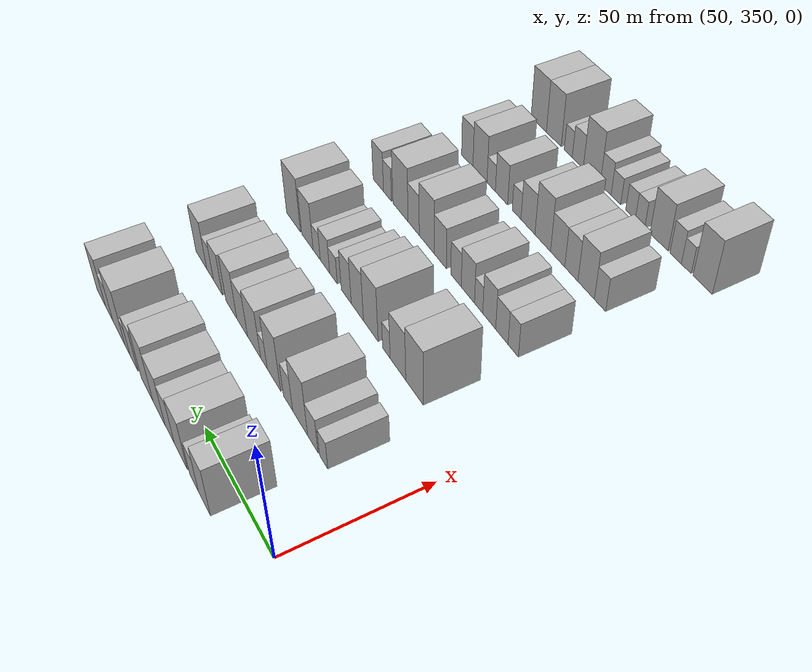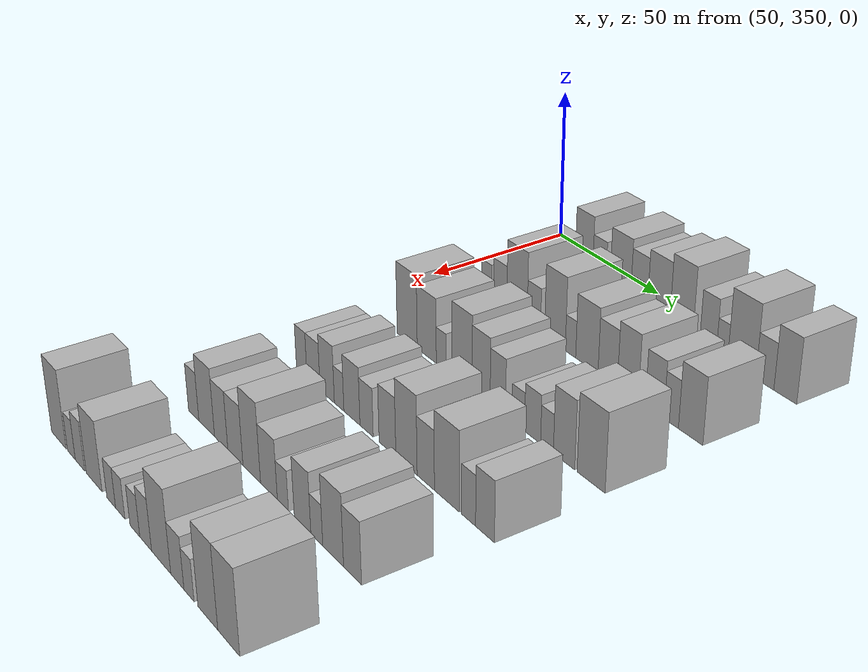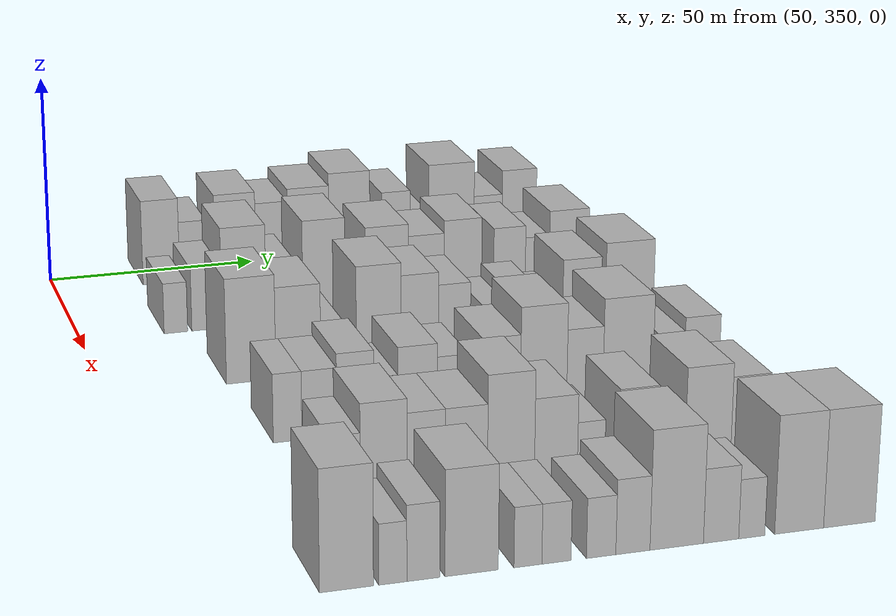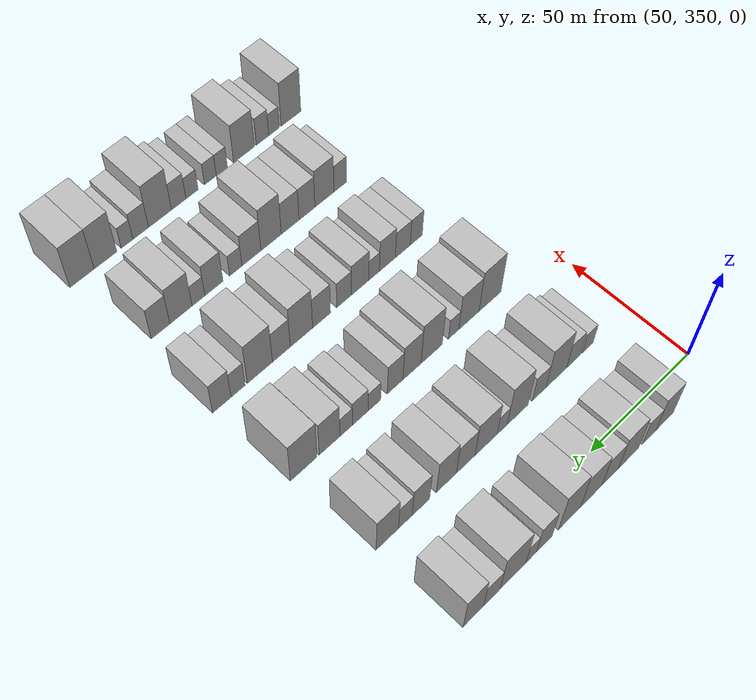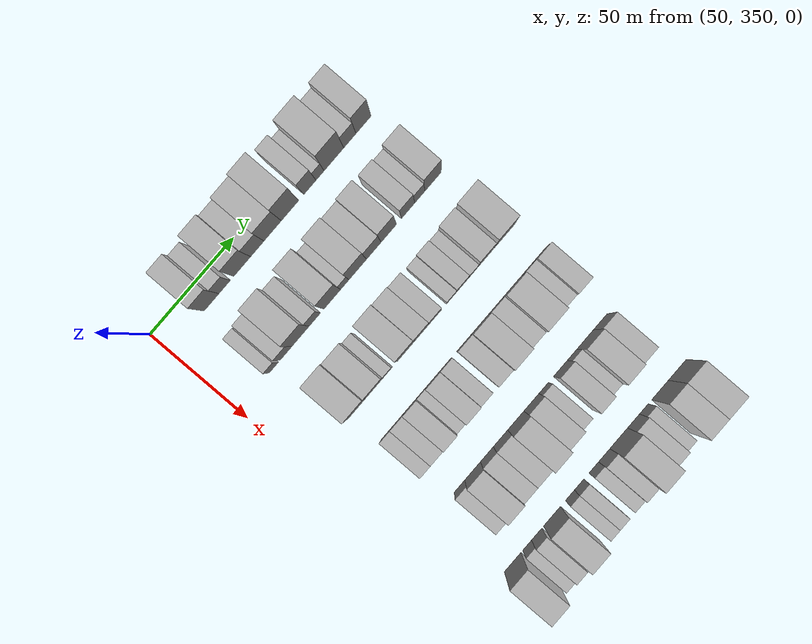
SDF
<sdf version="1.6">
 <world name="default">
  <model name="building_101">
   <static>1</static>
   <pose>50.0000 375.2770 0 0.000000 0.000000 0.000000</pose>
   <link name="link">
    <pose>0 0 10.50 0 0 0</pose>
    <collision name="collision"><geometry><box><size>20.0000 8.9855 21.0000</size></box></geometry></collision>
    <visual name="visual">
     <cast_shadows>0</cast_shadows>
     <geometry><box><size>20.0000 8.9855 21.0000</size></box></geometry>
     <material>
      <script>
       <uri>model://HANNAS_wall/materials/scripts</uri>
       <uri>model://HANNAS_wall/materials/textures</uri>
       <name>vrc/HANNAS_wall</name>
      </script>
     </material>
    </visual>
   </link>
  </model>
  <model name="building_102">
   <static>1</static>
   <pose>50.0000 383.1485 0 0.000000 0.000000 0.000000</pose>
   <link name="link">
    <pose>0 0 7.50 0 0 0</pose>
    <collision name="collision"><geometry><box><size>20.0000 6.7575 15.0000</size></box></geometry></collision>
    <visual name="visual">
     <cast_shadows>0</cast_shadows>
     <geometry><box><size>20.0000 6.7575 15.0000</size></box></geometry>
     <material>
      <script>
       <uri>model://HANNAS_wall/materials/scripts</uri>
       <uri>model://HANNAS_wall/materials/textures</uri>
       <name>vrc/HANNAS_wall</name>
      </script>
     </material>
    </visual>
   </link>
  </model>
  <model name="building_103">
   <static>1</static>
   <pose>50.0000 393.5942 0 0.000000 0.000000 0.000000</pose>
   <link name="link">
    <pose>0 0 10.50 0 0 0</pose>
    <collision name="collision"><geometry><box><size>20.0000 10.1339 21.0000</size></box></geometry></collision>
    <visual name="visual">
     <cast_shadows>0</cast_shadows>
     <geometry><box><size>20.0000 10.1339 21.0000</size></box></geometry>
     <material>
      <script>
       <uri>model://HANNAS_wall/materials/scripts</uri>
       <uri>model://HANNAS_wall/materials/textures</uri>
       <name>vrc/HANNAS_wall</name>
      </script>
     </material>
    </visual>
   </link>
  </model>
  <model name="building_104">
   <static>1</static>
   <pose>50.0000 402.6759 0 0.000000 0.000000 0.000000</pose>
   <link name="link">
    <pose>0 0 9.00 0 0 0</pose>
    <collision name="collision"><geometry><box><size>20.0000 8.0295 18.0000</size></box></geometry></collision>
    <visual name="visual">
     <cast_shadows>0</cast_shadows>
     <geometry><box><size>20.0000 8.0295 18.0000</size></box></geometry>
     <material>
      <script>
       <uri>model://HANNAS_wall/materials/scripts</uri>
       <uri>model://HANNAS_wall/materials/textures</uri>
       <name>vrc/HANNAS_wall</name>
      </script>
     </material>
    </visual>
   </link>
  </model>
  <model name="building_105">
   <static>1</static>
   <pose>50.0000 411.8850 0 0.000000 0.000000 0.000000</pose>
   <link name="link">
    <pose>0 0 10.50 0 0 0</pose>
    <collision name="collision"><geometry><box><size>20.0000 10.3888 21.0000</size></box></geometry></collision>
    <visual name="visual">
     <cast_shadows>0</cast_shadows>
     <geometry><box><size>20.0000 10.3888 21.0000</size></box></geometry>
     <material>
      <script>
       <uri>model://HANNAS_wall/materials/scripts</uri>
       <uri>model://HANNAS_wall/materials/textures</uri>
       <name>vrc/HANNAS_wall</name>
      </script>
     </material>
    </visual>
   </link>
  </model>
  <model name="building_106">
   <static>1</static>
   <pose>50.0000 422.3034 0 0.000000 0.000000 0.000000</pose>
   <link name="link">
    <pose>0 0 12.00 0 0 0</pose>
    <collision name="collision"><geometry><box><size>20.0000 10.4482 24.0000</size></box></geometry></collision>
    <visual name="visual">
     <cast_shadows>0</cast_shadows>
     <geometry><box><size>20.0000 10.4482 24.0000</size></box></geometry>
     <material>
      <script>
       <uri>model://HANNAS_wall/materials/scripts</uri>
       <uri>model://HANNAS_wall/materials/textures</uri>
       <name>vrc/HANNAS_wall</name>
      </script>
     </material>
    </visual>
   </link>
  </model>
  <model name="building_107">
   <static>1</static>
   <pose>50.0000 434.1725 0 0.000000 0.000000 0.000000</pose>
   <link name="link">
    <pose>0 0 9.00 0 0 0</pose>
    <collision name="collision"><geometry><box><size>20.0000 7.2899 18.0000</size></box></geometry></collision>
    <visual name="visual">
     <cast_shadows>0</cast_shadows>
     <geometry><box><size>20.0000 7.2899 18.0000</size></box></geometry>
     <material>
      <script>
       <uri>model://HANNAS_wall/materials/scripts</uri>
       <uri>model://HANNAS_wall/materials/textures</uri>
       <name>vrc/HANNAS_wall</name>
      </script>
     </material>
    </visual>
   </link>
  </model>
  <model name="building_108">
   <static>1</static>
   <pose>50.0000 440.2453 0 0.000000 0.000000 0.000000</pose>
   <link name="link">
    <pose>0 0 6.00 0 0 0</pose>
    <collision name="collision"><geometry><box><size>20.0000 4.8557 12.0000</size></box></geometry></collision>
    <visual name="visual">
     <cast_shadows>0</cast_shadows>
     <geometry><box><size>20.0000 4.8557 12.0000</size></box></geometry>
     <material>
      <script>
       <uri>model://HANNAS_wall/materials/scripts</uri>
       <uri>model://HANNAS_wall/materials/textures</uri>
       <name>vrc/HANNAS_wall</name>
      </script>
     </material>
    </visual>
   </link>
  </model>
  <model name="building_109">
   <static>1</static>
   <pose>50.0000 448.5437 0 0.000000 0.000000 0.000000</pose>
   <link name="link">
    <pose>0 0 12.00 0 0 0</pose>
    <collision name="collision"><geometry><box><size>20.0000 11.7410 24.0000</size></box></geometry></collision>
    <visual name="visual">
     <cast_shadows>0</cast_shadows>
     <geometry><box><size>20.0000 11.7410 24.0000</size></box></geometry>
     <material>
      <script>
       <uri>model://HANNAS_wall/materials/scripts</uri>
       <uri>model://HANNAS_wall/materials/textures</uri>
       <name>vrc/HANNAS_wall</name>
      </script>
     </material>
    </visual>
   </link>
  </model>
  <model name="building_110">
   <static>1</static>
   <pose>50.0000 458.0843 0 0.000000 0.000000 0.000000</pose>
   <link name="link">
    <pose>0 0 7.50 0 0 0</pose>
    <collision name="collision"><geometry><box><size>20.0000 7.3402 15.0000</size></box></geometry></collision>
    <visual name="visual">
     <cast_shadows>0</cast_shadows>
     <geometry><box><size>20.0000 7.3402 15.0000</size></box></geometry>
     <material>
      <script>
       <uri>model://HANNAS_wall/materials/scripts</uri>
       <uri>model://HANNAS_wall/materials/textures</uri>
       <name>vrc/HANNAS_wall</name>
      </script>
     </material>
    </visual>
   </link>
  </model>
  <model name="building_111">
   <static>1</static>
   <pose>50.0000 466.2588 0 0.000000 0.000000 0.000000</pose>
   <link name="link">
    <pose>0 0 10.50 0 0 0</pose>
    <collision name="collision"><geometry><box><size>20.0000 9.0088 21.0000</size></box></geometry></collision>
    <visual name="visual">
     <cast_shadows>0</cast_shadows>
     <geometry><box><size>20.0000 9.0088 21.0000</size></box></geometry>
     <material>
      <script>
       <uri>model://HANNAS_wall/materials/scripts</uri>
       <uri>model://HANNAS_wall/materials/textures</uri>
       <name>vrc/HANNAS_wall</name>
      </script>
     </material>
    </visual>
   </link>
  </model>
  <model name="building_230">
   <static>1</static>
   <pose>85.0000 371.7570 0 0.000000 0.000000 0.000000</pose>
   <link name="link">
    <pose>0 0 6.00 0 0 0</pose>
    <collision name="collision"><geometry><box><size>20.0000 5.4602 12.0000</size></box></geometry></collision>
    <visual name="visual">
     <cast_shadows>0</cast_shadows>
     <geometry><box><size>20.0000 5.4602 12.0000</size></box></geometry>
     <material>
      <script>
       <uri>model://HANNAS_wall/materials/scripts</uri>
       <uri>model://HANNAS_wall/materials/textures</uri>
       <name>vrc/HANNAS_wall</name>
      </script>
     </material>
    </visual>
   </link>
  </model>
  <model name="building_231">
   <static>1</static>
   <pose>85.0000 379.0140 0 0.000000 0.000000 0.000000</pose>
   <link name="link">
    <pose>0 0 7.50 0 0 0</pose>
    <collision name="collision"><geometry><box><size>20.0000 7.0538 15.0000</size></box></geometry></collision>
    <visual name="visual">
     <cast_shadows>0</cast_shadows>
     <geometry><box><size>20.0000 7.0538 15.0000</size></box></geometry>
     <material>
      <script>
       <uri>model://HANNAS_wall/materials/scripts</uri>
       <uri>model://HANNAS_wall/materials/textures</uri>
       <name>vrc/HANNAS_wall</name>
      </script>
     </material>
    </visual>
   </link>
  </model>
  <model name="building_232">
   <static>1</static>
   <pose>85.0000 387.7725 0 0.000000 0.000000 0.000000</pose>
   <link name="link">
    <pose>0 0 12.00 0 0 0</pose>
    <collision name="collision"><geometry><box><size>20.0000 10.4632 24.0000</size></box></geometry></collision>
    <visual name="visual">
     <cast_shadows>0</cast_shadows>
     <geometry><box><size>20.0000 10.4632 24.0000</size></box></geometry>
     <material>
      <script>
       <uri>model://HANNAS_wall/materials/scripts</uri>
       <uri>model://HANNAS_wall/materials/textures</uri>
       <name>vrc/HANNAS_wall</name>
      </script>
     </material>
    </visual>
   </link>
  </model>
  <model name="building_233">
   <static>1</static>
   <pose>85.0000 396.3673 0 0.000000 0.000000 0.000000</pose>
   <link name="link">
    <pose>0 0 7.50 0 0 0</pose>
    <collision name="collision"><geometry><box><size>20.0000 6.7263 15.0000</size></box></geometry></collision>
    <visual name="visual">
     <cast_shadows>0</cast_shadows>
     <geometry><box><size>20.0000 6.7263 15.0000</size></box></geometry>
     <material>
      <script>
       <uri>model://HANNAS_wall/materials/scripts</uri>
       <uri>model://HANNAS_wall/materials/textures</uri>
       <name>vrc/HANNAS_wall</name>
      </script>
     </material>
    </visual>
   </link>
  </model>
  <model name="building_234">
   <static>1</static>
   <pose>85.0000 406.7867 0 0.000000 0.000000 0.000000</pose>
   <link name="link">
    <pose>0 0 12.00 0 0 0</pose>
    <collision name="collision"><geometry><box><size>20.0000 10.1126 24.0000</size></box></geometry></collision>
    <visual name="visual">
     <cast_shadows>0</cast_shadows>
     <geometry><box><size>20.0000 10.1126 24.0000</size></box></geometry>
     <material>
      <script>
       <uri>model://HANNAS_wall/materials/scripts</uri>
       <uri>model://HANNAS_wall/materials/textures</uri>
       <name>vrc/HANNAS_wall</name>
      </script>
     </material>
    </visual>
   </link>
  </model>
  <model name="building_235">
   <static>1</static>
   <pose>85.0000 414.3198 0 0.000000 0.000000 0.000000</pose>
   <link name="link">
    <pose>0 0 6.00 0 0 0</pose>
    <collision name="collision"><geometry><box><size>20.0000 4.9536 12.0000</size></box></geometry></collision>
    <visual name="visual">
     <cast_shadows>0</cast_shadows>
     <geometry><box><size>20.0000 4.9536 12.0000</size></box></geometry>
     <material>
      <script>
       <uri>model://HANNAS_wall/materials/scripts</uri>
       <uri>model://HANNAS_wall/materials/textures</uri>
       <name>vrc/HANNAS_wall</name>
      </script>
     </material>
    </visual>
   </link>
  </model>
  <model name="building_236">
   <static>1</static>
   <pose>85.0000 422.0035 0 0.000000 0.000000 0.000000</pose>
   <link name="link">
    <pose>0 0 10.50 0 0 0</pose>
    <collision name="collision"><geometry><box><size>20.0000 10.4140 21.0000</size></box></geometry></collision>
    <visual name="visual">
     <cast_shadows>0</cast_shadows>
     <geometry><box><size>20.0000 10.4140 21.0000</size></box></geometry>
     <material>
      <script>
       <uri>model://HANNAS_wall/materials/scripts</uri>
       <uri>model://HANNAS_wall/materials/textures</uri>
       <name>vrc/HANNAS_wall</name>
      </script>
     </material>
    </visual>
   </link>
  </model>
  <model name="building_237">
   <static>1</static>
   <pose>85.0000 431.5766 0 0.000000 0.000000 0.000000</pose>
   <link name="link">
    <pose>0 0 9.00 0 0 0</pose>
    <collision name="collision"><geometry><box><size>20.0000 8.7321 18.0000</size></box></geometry></collision>
    <visual name="visual">
     <cast_shadows>0</cast_shadows>
     <geometry><box><size>20.0000 8.7321 18.0000</size></box></geometry>
     <material>
      <script>
       <uri>model://HANNAS_wall/materials/scripts</uri>
       <uri>model://HANNAS_wall/materials/textures</uri>
       <name>vrc/HANNAS_wall</name>
      </script>
     </material>
    </visual>
   </link>
  </model>
  <model name="building_238">
   <static>1</static>
   <pose>85.0000 440.5387 0 0.000000 0.000000 0.000000</pose>
   <link name="link">
    <pose>0 0 10.50 0 0 0</pose>
    <collision name="collision"><geometry><box><size>20.0000 9.1922 21.0000</size></box></geometry></collision>
    <visual name="visual">
     <cast_shadows>0</cast_shadows>
     <geometry><box><size>20.0000 9.1922 21.0000</size></box></geometry>
     <material>
      <script>
       <uri>model://HANNAS_wall/materials/scripts</uri>
       <uri>model://HANNAS_wall/materials/textures</uri>
       <name>vrc/HANNAS_wall</name>
      </script>
     </material>
    </visual>
   </link>
  </model>
  <model name="building_239">
   <static>1</static>
   <pose>85.0000 452.0698 0 0.000000 0.000000 0.000000</pose>
   <link name="link">
    <pose>0 0 9.00 0 0 0</pose>
    <collision name="collision"><geometry><box><size>20.0000 7.8701 18.0000</size></box></geometry></collision>
    <visual name="visual">
     <cast_shadows>0</cast_shadows>
     <geometry><box><size>20.0000 7.8701 18.0000</size></box></geometry>
     <material>
      <script>
       <uri>model://HANNAS_wall/materials/scripts</uri>
       <uri>model://HANNAS_wall/materials/textures</uri>
       <name>vrc/HANNAS_wall</name>
      </script>
     </material>
    </visual>
   </link>
  </model>
  <model name="building_240">
   <static>1</static>
   <pose>85.0000 459.0130 0 0.000000 0.000000 0.000000</pose>
   <link name="link">
    <pose>0 0 7.50 0 0 0</pose>
    <collision name="collision"><geometry><box><size>20.0000 6.0163 15.0000</size></box></geometry></collision>
    <visual name="visual">
     <cast_shadows>0</cast_shadows>
     <geometry><box><size>20.0000 6.0163 15.0000</size></box></geometry>
     <material>
      <script>
       <uri>model://HANNAS_wall/materials/scripts</uri>
       <uri>model://HANNAS_wall/materials/textures</uri>
       <name>vrc/HANNAS_wall</name>
      </script>
     </material>
    </visual>
   </link>
  </model>
  <model name="building_241">
   <static>1</static>
   <pose>85.0000 466.9435 0 0.000000 0.000000 0.000000</pose>
   <link name="link">
    <pose>0 0 10.50 0 0 0</pose>
    <collision name="collision"><geometry><box><size>20.0000 9.8446 21.0000</size></box></geometry></collision>
    <visual name="visual">
     <cast_shadows>0</cast_shadows>
     <geometry><box><size>20.0000 9.8446 21.0000</size></box></geometry>
     <material>
      <script>
       <uri>model://HANNAS_wall/materials/scripts</uri>
       <uri>model://HANNAS_wall/materials/textures</uri>
       <name>vrc/HANNAS_wall</name>
      </script>
     </material>
    </visual>
   </link>
  </model>
  <model name="building_362">
   <static>1</static>
   <pose>120.0000 381.3465 0 0.000000 0.000000 0.000000</pose>
   <link name="link">
    <pose>0 0 12.00 0 0 0</pose>
    <collision name="collision"><geometry><box><size>20.0000 10.9932 24.0000</size></box></geometry></collision>
    <visual name="visual">
     <cast_shadows>0</cast_shadows>
     <geometry><box><size>20.0000 10.9932 24.0000</size></box></geometry>
     <material>
      <script>
       <uri>model://HANNAS_wall/materials/scripts</uri>
       <uri>model://HANNAS_wall/materials/textures</uri>
       <name>vrc/HANNAS_wall</name>
      </script>
     </material>
    </visual>
   </link>
  </model>
  <model name="building_363">
   <static>1</static>
   <pose>120.0000 391.9065 0 0.000000 0.000000 0.000000</pose>
   <link name="link">
    <pose>0 0 10.50 0 0 0</pose>
    <collision name="collision"><geometry><box><size>20.0000 10.1268 21.0000</size></box></geometry></collision>
    <visual name="visual">
     <cast_shadows>0</cast_shadows>
     <geometry><box><size>20.0000 10.1268 21.0000</size></box></geometry>
     <material>
      <script>
       <uri>model://HANNAS_wall/materials/scripts</uri>
       <uri>model://HANNAS_wall/materials/textures</uri>
       <name>vrc/HANNAS_wall</name>
      </script>
     </material>
    </visual>
   </link>
  </model>
  <model name="building_364">
   <static>1</static>
   <pose>120.0000 399.5094 0 0.000000 0.000000 0.000000</pose>
   <link name="link">
    <pose>0 0 6.00 0 0 0</pose>
    <collision name="collision"><geometry><box><size>20.0000 5.0789 12.0000</size></box></geometry></collision>
    <visual name="visual">
     <cast_shadows>0</cast_shadows>
     <geometry><box><size>20.0000 5.0789 12.0000</size></box></geometry>
     <material>
      <script>
       <uri>model://HANNAS_wall/materials/scripts</uri>
       <uri>model://HANNAS_wall/materials/textures</uri>
       <name>vrc/HANNAS_wall</name>
      </script>
     </material>
    </visual>
   </link>
  </model>
  <model name="building_365">
   <static>1</static>
   <pose>120.0000 410.1352 0 0.000000 0.000000 0.000000</pose>
   <link name="link">
    <pose>0 0 12.00 0 0 0</pose>
    <collision name="collision"><geometry><box><size>20.0000 10.1728 24.0000</size></box></geometry></collision>
    <visual name="visual">
     <cast_shadows>0</cast_shadows>
     <geometry><box><size>20.0000 10.1728 24.0000</size></box></geometry>
     <material>
      <script>
       <uri>model://HANNAS_wall/materials/scripts</uri>
       <uri>model://HANNAS_wall/materials/textures</uri>
       <name>vrc/HANNAS_wall</name>
      </script>
     </material>
    </visual>
   </link>
  </model>
  <model name="building_366">
   <static>1</static>
   <pose>120.0000 419.5690 0 0.000000 0.000000 0.000000</pose>
   <link name="link">
    <pose>0 0 10.50 0 0 0</pose>
    <collision name="collision"><geometry><box><size>20.0000 8.6947 21.0000</size></box></geometry></collision>
    <visual name="visual">
     <cast_shadows>0</cast_shadows>
     <geometry><box><size>20.0000 8.6947 21.0000</size></box></geometry>
     <material>
      <script>
       <uri>model://HANNAS_wall/materials/scripts</uri>
       <uri>model://HANNAS_wall/materials/textures</uri>
       <name>vrc/HANNAS_wall</name>
      </script>
     </material>
    </visual>
   </link>
  </model>
  <model name="building_367">
   <static>1</static>
   <pose>120.0000 427.5799 0 0.000000 0.000000 0.000000</pose>
   <link name="link">
    <pose>0 0 9.00 0 0 0</pose>
    <collision name="collision"><geometry><box><size>20.0000 7.3273 18.0000</size></box></geometry></collision>
    <visual name="visual">
     <cast_shadows>0</cast_shadows>
     <geometry><box><size>20.0000 7.3273 18.0000</size></box></geometry>
     <material>
      <script>
       <uri>model://HANNAS_wall/materials/scripts</uri>
       <uri>model://HANNAS_wall/materials/textures</uri>
       <name>vrc/HANNAS_wall</name>
      </script>
     </material>
    </visual>
   </link>
  </model>
  <model name="building_368">
   <static>1</static>
   <pose>120.0000 437.1459 0 0.000000 0.000000 0.000000</pose>
   <link name="link">
    <pose>0 0 6.00 0 0 0</pose>
    <collision name="collision"><geometry><box><size>20.0000 5.8047 12.0000</size></box></geometry></collision>
    <visual name="visual">
     <cast_shadows>0</cast_shadows>
     <geometry><box><size>20.0000 5.8047 12.0000</size></box></geometry>
     <material>
      <script>
       <uri>model://HANNAS_wall/materials/scripts</uri>
       <uri>model://HANNAS_wall/materials/textures</uri>
       <name>vrc/HANNAS_wall</name>
      </script>
     </material>
    </visual>
   </link>
  </model>
  <model name="building_369">
   <static>1</static>
   <pose>120.0000 443.6602 0 0.000000 0.000000 0.000000</pose>
   <link name="link">
    <pose>0 0 7.50 0 0 0</pose>
    <collision name="collision"><geometry><box><size>20.0000 7.2239 15.0000</size></box></geometry></collision>
    <visual name="visual">
     <cast_shadows>0</cast_shadows>
     <geometry><box><size>20.0000 7.2239 15.0000</size></box></geometry>
     <material>
      <script>
       <uri>model://HANNAS_wall/materials/scripts</uri>
       <uri>model://HANNAS_wall/materials/textures</uri>
       <name>vrc/HANNAS_wall</name>
      </script>
     </material>
    </visual>
   </link>
  </model>
  <model name="building_370">
   <static>1</static>
   <pose>120.0000 450.0879 0 0.000000 0.000000 0.000000</pose>
   <link name="link">
    <pose>0 0 6.00 0 0 0</pose>
    <collision name="collision"><geometry><box><size>20.0000 5.6314 12.0000</size></box></geometry></collision>
    <visual name="visual">
     <cast_shadows>0</cast_shadows>
     <geometry><box><size>20.0000 5.6314 12.0000</size></box></geometry>
     <material>
      <script>
       <uri>model://HANNAS_wall/materials/scripts</uri>
       <uri>model://HANNAS_wall/materials/textures</uri>
       <name>vrc/HANNAS_wall</name>
      </script>
     </material>
    </visual>
   </link>
  </model>
  <model name="building_371">
   <static>1</static>
   <pose>120.0000 457.4847 0 0.000000 0.000000 0.000000</pose>
   <link name="link">
    <pose>0 0 10.50 0 0 0</pose>
    <collision name="collision"><geometry><box><size>20.0000 9.1622 21.0000</size></box></geometry></collision>
    <visual name="visual">
     <cast_shadows>0</cast_shadows>
     <geometry><box><size>20.0000 9.1622 21.0000</size></box></geometry>
     <material>
      <script>
       <uri>model://HANNAS_wall/materials/scripts</uri>
       <uri>model://HANNAS_wall/materials/textures</uri>
       <name>vrc/HANNAS_wall</name>
      </script>
     </material>
    </visual>
   </link>
  </model>
  <model name="building_372">
   <static>1</static>
   <pose>120.0000 468.8580 0 0.000000 0.000000 0.000000</pose>
   <link name="link">
    <pose>0 0 12.00 0 0 0</pose>
    <collision name="collision"><geometry><box><size>20.0000 11.5844 24.0000</size></box></geometry></collision>
    <visual name="visual">
     <cast_shadows>0</cast_shadows>
     <geometry><box><size>20.0000 11.5844 24.0000</size></box></geometry>
     <material>
      <script>
       <uri>model://HANNAS_wall/materials/scripts</uri>
       <uri>model://HANNAS_wall/materials/textures</uri>
       <name>vrc/HANNAS_wall</name>
      </script>
     </material>
    </visual>
   </link>
  </model>
  <model name="building_486">
   <static>1</static>
   <pose>155.0000 380.9170 0 0.000000 0.000000 0.000000</pose>
   <link name="link">
    <pose>0 0 7.50 0 0 0</pose>
    <collision name="collision"><geometry><box><size>20.0000 6.0307 15.0000</size></box></geometry></collision>
    <visual name="visual">
     <cast_shadows>0</cast_shadows>
     <geometry><box><size>20.0000 6.0307 15.0000</size></box></geometry>
     <material>
      <script>
       <uri>model://HANNAS_wall/materials/scripts</uri>
       <uri>model://HANNAS_wall/materials/textures</uri>
       <name>vrc/HANNAS_wall</name>
      </script>
     </material>
    </visual>
   </link>
  </model>
  <model name="building_487">
   <static>1</static>
   <pose>155.0000 387.6429 0 0.000000 0.000000 0.000000</pose>
   <link name="link">
    <pose>0 0 7.50 0 0 0</pose>
    <collision name="collision"><geometry><box><size>20.0000 7.4211 15.0000</size></box></geometry></collision>
    <visual name="visual">
     <cast_shadows>0</cast_shadows>
     <geometry><box><size>20.0000 7.4211 15.0000</size></box></geometry>
     <material>
      <script>
       <uri>model://HANNAS_wall/materials/scripts</uri>
       <uri>model://HANNAS_wall/materials/textures</uri>
       <name>vrc/HANNAS_wall</name>
      </script>
     </material>
    </visual>
   </link>
  </model>
  <model name="building_488">
   <static>1</static>
   <pose>155.0000 395.3073 0 0.000000 0.000000 0.000000</pose>
   <link name="link">
    <pose>0 0 9.00 0 0 0</pose>
    <collision name="collision"><geometry><box><size>20.0000 7.9077 18.0000</size></box></geometry></collision>
    <visual name="visual">
     <cast_shadows>0</cast_shadows>
     <geometry><box><size>20.0000 7.9077 18.0000</size></box></geometry>
     <material>
      <script>
       <uri>model://HANNAS_wall/materials/scripts</uri>
       <uri>model://HANNAS_wall/materials/textures</uri>
       <name>vrc/HANNAS_wall</name>
      </script>
     </material>
    </visual>
   </link>
  </model>
  <model name="building_489">
   <static>1</static>
   <pose>155.0000 401.8407 0 0.000000 0.000000 0.000000</pose>
   <link name="link">
    <pose>0 0 6.00 0 0 0</pose>
    <collision name="collision"><geometry><box><size>20.0000 5.1591 12.0000</size></box></geometry></collision>
    <visual name="visual">
     <cast_shadows>0</cast_shadows>
     <geometry><box><size>20.0000 5.1591 12.0000</size></box></geometry>
     <material>
      <script>
       <uri>model://HANNAS_wall/materials/scripts</uri>
       <uri>model://HANNAS_wall/materials/textures</uri>
       <name>vrc/HANNAS_wall</name>
      </script>
     </material>
    </visual>
   </link>
  </model>
  <model name="building_490">
   <static>1</static>
   <pose>155.0000 408.6831 0 0.000000 0.000000 0.000000</pose>
   <link name="link">
    <pose>0 0 9.00 0 0 0</pose>
    <collision name="collision"><geometry><box><size>20.0000 8.5256 18.0000</size></box></geometry></collision>
    <visual name="visual">
     <cast_shadows>0</cast_shadows>
     <geometry><box><size>20.0000 8.5256 18.0000</size></box></geometry>
     <material>
      <script>
       <uri>model://HANNAS_wall/materials/scripts</uri>
       <uri>model://HANNAS_wall/materials/textures</uri>
       <name>vrc/HANNAS_wall</name>
      </script>
     </material>
    </visual>
   </link>
  </model>
  <model name="building_491">
   <static>1</static>
   <pose>155.0000 416.3753 0 0.000000 0.000000 0.000000</pose>
   <link name="link">
    <pose>0 0 7.50 0 0 0</pose>
    <collision name="collision"><geometry><box><size>20.0000 6.8588 15.0000</size></box></geometry></collision>
    <visual name="visual">
     <cast_shadows>0</cast_shadows>
     <geometry><box><size>20.0000 6.8588 15.0000</size></box></geometry>
     <material>
      <script>
       <uri>model://HANNAS_wall/materials/scripts</uri>
       <uri>model://HANNAS_wall/materials/textures</uri>
       <name>vrc/HANNAS_wall</name>
      </script>
     </material>
    </visual>
   </link>
  </model>
  <model name="building_492">
   <static>1</static>
   <pose>155.0000 426.9784 0 0.000000 0.000000 0.000000</pose>
   <link name="link">
    <pose>0 0 9.00 0 0 0</pose>
    <collision name="collision"><geometry><box><size>20.0000 8.3475 18.0000</size></box></geometry></collision>
    <visual name="visual">
     <cast_shadows>0</cast_shadows>
     <geometry><box><size>20.0000 8.3475 18.0000</size></box></geometry>
     <material>
      <script>
       <uri>model://HANNAS_wall/materials/scripts</uri>
       <uri>model://HANNAS_wall/materials/textures</uri>
       <name>vrc/HANNAS_wall</name>
      </script>
     </material>
    </visual>
   </link>
  </model>
  <model name="building_493">
   <static>1</static>
   <pose>155.0000 436.3048 0 0.000000 0.000000 0.000000</pose>
   <link name="link">
    <pose>0 0 12.00 0 0 0</pose>
    <collision name="collision"><geometry><box><size>20.0000 10.3053 24.0000</size></box></geometry></collision>
    <visual name="visual">
     <cast_shadows>0</cast_shadows>
     <geometry><box><size>20.0000 10.3053 24.0000</size></box></geometry>
     <material>
      <script>
       <uri>model://HANNAS_wall/materials/scripts</uri>
       <uri>model://HANNAS_wall/materials/textures</uri>
       <name>vrc/HANNAS_wall</name>
      </script>
     </material>
    </visual>
   </link>
  </model>
  <model name="building_494">
   <static>1</static>
   <pose>155.0000 445.5079 0 0.000000 0.000000 0.000000</pose>
   <link name="link">
    <pose>0 0 9.00 0 0 0</pose>
    <collision name="collision"><geometry><box><size>20.0000 8.1010 18.0000</size></box></geometry></collision>
    <visual name="visual">
     <cast_shadows>0</cast_shadows>
     <geometry><box><size>20.0000 8.1010 18.0000</size></box></geometry>
     <material>
      <script>
       <uri>model://HANNAS_wall/materials/scripts</uri>
       <uri>model://HANNAS_wall/materials/textures</uri>
       <name>vrc/HANNAS_wall</name>
      </script>
     </material>
    </visual>
   </link>
  </model>
  <model name="building_495">
   <static>1</static>
   <pose>155.0000 455.1946 0 0.000000 0.000000 0.000000</pose>
   <link name="link">
    <pose>0 0 12.00 0 0 0</pose>
    <collision name="collision"><geometry><box><size>20.0000 11.2723 24.0000</size></box></geometry></collision>
    <visual name="visual">
     <cast_shadows>0</cast_shadows>
     <geometry><box><size>20.0000 11.2723 24.0000</size></box></geometry>
     <material>
      <script>
       <uri>model://HANNAS_wall/materials/scripts</uri>
       <uri>model://HANNAS_wall/materials/textures</uri>
       <name>vrc/HANNAS_wall</name>
      </script>
     </material>
    </visual>
   </link>
  </model>
  <model name="building_496">
   <static>1</static>
   <pose>155.0000 464.9022 0 0.000000 0.000000 0.000000</pose>
   <link name="link">
    <pose>0 0 7.50 0 0 0</pose>
    <collision name="collision"><geometry><box><size>20.0000 6.1430 15.0000</size></box></geometry></collision>
    <visual name="visual">
     <cast_shadows>0</cast_shadows>
     <geometry><box><size>20.0000 6.1430 15.0000</size></box></geometry>
     <material>
      <script>
       <uri>model://HANNAS_wall/materials/scripts</uri>
       <uri>model://HANNAS_wall/materials/textures</uri>
       <name>vrc/HANNAS_wall</name>
      </script>
     </material>
    </visual>
   </link>
  </model>
  <model name="building_497">
   <static>1</static>
   <pose>155.0000 472.0026 0 0.000000 0.000000 0.000000</pose>
   <link name="link">
    <pose>0 0 9.00 0 0 0</pose>
    <collision name="collision"><geometry><box><size>20.0000 8.0578 18.0000</size></box></geometry></collision>
    <visual name="visual">
     <cast_shadows>0</cast_shadows>
     <geometry><box><size>20.0000 8.0578 18.0000</size></box></geometry>
     <material>
      <script>
       <uri>model://HANNAS_wall/materials/scripts</uri>
       <uri>model://HANNAS_wall/materials/textures</uri>
       <name>vrc/HANNAS_wall</name>
      </script>
     </material>
    </visual>
   </link>
  </model>
  <model name="building_616">
   <static>1</static>
   <pose>190.0000 383.6296 0 0.000000 0.000000 0.000000</pose>
   <link name="link">
    <pose>0 0 7.50 0 0 0</pose>
    <collision name="collision"><geometry><box><size>20.0000 6.3311 15.0000</size></box></geometry></collision>
    <visual name="visual">
     <cast_shadows>0</cast_shadows>
     <geometry><box><size>20.0000 6.3311 15.0000</size></box></geometry>
     <material>
      <script>
       <uri>model://HANNAS_wall/materials/scripts</uri>
       <uri>model://HANNAS_wall/materials/textures</uri>
       <name>vrc/HANNAS_wall</name>
      </script>
     </material>
    </visual>
   </link>
  </model>
  <model name="building_617">
   <static>1</static>
   <pose>190.0000 391.5063 0 0.000000 0.000000 0.000000</pose>
   <link name="link">
    <pose>0 0 10.50 0 0 0</pose>
    <collision name="collision"><geometry><box><size>20.0000 9.4223 21.0000</size></box></geometry></collision>
    <visual name="visual">
     <cast_shadows>0</cast_shadows>
     <geometry><box><size>20.0000 9.4223 21.0000</size></box></geometry>
     <material>
      <script>
       <uri>model://HANNAS_wall/materials/scripts</uri>
       <uri>model://HANNAS_wall/materials/textures</uri>
       <name>vrc/HANNAS_wall</name>
      </script>
     </material>
    </visual>
   </link>
  </model>
  <model name="building_618">
   <static>1</static>
   <pose>190.0000 400.0886 0 0.000000 0.000000 0.000000</pose>
   <link name="link">
    <pose>0 0 9.00 0 0 0</pose>
    <collision name="collision"><geometry><box><size>20.0000 7.7424 18.0000</size></box></geometry></collision>
    <visual name="visual">
     <cast_shadows>0</cast_shadows>
     <geometry><box><size>20.0000 7.7424 18.0000</size></box></geometry>
     <material>
      <script>
       <uri>model://HANNAS_wall/materials/scripts</uri>
       <uri>model://HANNAS_wall/materials/textures</uri>
       <name>vrc/HANNAS_wall</name>
      </script>
     </material>
    </visual>
   </link>
  </model>
  <model name="building_619">
   <static>1</static>
   <pose>190.0000 408.2500 0 0.000000 0.000000 0.000000</pose>
   <link name="link">
    <pose>0 0 9.00 0 0 0</pose>
    <collision name="collision"><geometry><box><size>20.0000 8.5803 18.0000</size></box></geometry></collision>
    <visual name="visual">
     <cast_shadows>0</cast_shadows>
     <geometry><box><size>20.0000 8.5803 18.0000</size></box></geometry>
     <material>
      <script>
       <uri>model://HANNAS_wall/materials/scripts</uri>
       <uri>model://HANNAS_wall/materials/textures</uri>
       <name>vrc/HANNAS_wall</name>
      </script>
     </material>
    </visual>
   </link>
  </model>
  <model name="building_620">
   <static>1</static>
   <pose>190.0000 417.3894 0 0.000000 0.000000 0.000000</pose>
   <link name="link">
    <pose>0 0 12.00 0 0 0</pose>
    <collision name="collision"><geometry><box><size>20.0000 9.6984 24.0000</size></box></geometry></collision>
    <visual name="visual">
     <cast_shadows>0</cast_shadows>
     <geometry><box><size>20.0000 9.6984 24.0000</size></box></geometry>
     <material>
      <script>
       <uri>model://HANNAS_wall/materials/scripts</uri>
       <uri>model://HANNAS_wall/materials/textures</uri>
       <name>vrc/HANNAS_wall</name>
      </script>
     </material>
    </visual>
   </link>
  </model>
  <model name="building_621">
   <static>1</static>
   <pose>190.0000 426.7163 0 0.000000 0.000000 0.000000</pose>
   <link name="link">
    <pose>0 0 9.00 0 0 0</pose>
    <collision name="collision"><geometry><box><size>20.0000 8.9554 18.0000</size></box></geometry></collision>
    <visual name="visual">
     <cast_shadows>0</cast_shadows>
     <geometry><box><size>20.0000 8.9554 18.0000</size></box></geometry>
     <material>
      <script>
       <uri>model://HANNAS_wall/materials/scripts</uri>
       <uri>model://HANNAS_wall/materials/textures</uri>
       <name>vrc/HANNAS_wall</name>
      </script>
     </material>
    </visual>
   </link>
  </model>
  <model name="building_622">
   <static>1</static>
   <pose>190.0000 434.0698 0 0.000000 0.000000 0.000000</pose>
   <link name="link">
    <pose>0 0 6.00 0 0 0</pose>
    <collision name="collision"><geometry><box><size>20.0000 5.7516 12.0000</size></box></geometry></collision>
    <visual name="visual">
     <cast_shadows>0</cast_shadows>
     <geometry><box><size>20.0000 5.7516 12.0000</size></box></geometry>
     <material>
      <script>
       <uri>model://HANNAS_wall/materials/scripts</uri>
       <uri>model://HANNAS_wall/materials/textures</uri>
       <name>vrc/HANNAS_wall</name>
      </script>
     </material>
    </visual>
   </link>
  </model>
  <model name="building_623">
   <static>1</static>
   <pose>190.0000 444.0874 0 0.000000 0.000000 0.000000</pose>
   <link name="link">
    <pose>0 0 9.00 0 0 0</pose>
    <collision name="collision"><geometry><box><size>20.0000 8.2837 18.0000</size></box></geometry></collision>
    <visual name="visual">
     <cast_shadows>0</cast_shadows>
     <geometry><box><size>20.0000 8.2837 18.0000</size></box></geometry>
     <material>
      <script>
       <uri>model://HANNAS_wall/materials/scripts</uri>
       <uri>model://HANNAS_wall/materials/textures</uri>
       <name>vrc/HANNAS_wall</name>
      </script>
     </material>
    </visual>
   </link>
  </model>
  <model name="building_624">
   <static>1</static>
   <pose>190.0000 451.1320 0 0.000000 0.000000 0.000000</pose>
   <link name="link">
    <pose>0 0 6.00 0 0 0</pose>
    <collision name="collision"><geometry><box><size>20.0000 5.8053 12.0000</size></box></geometry></collision>
    <visual name="visual">
     <cast_shadows>0</cast_shadows>
     <geometry><box><size>20.0000 5.8053 12.0000</size></box></geometry>
     <material>
      <script>
       <uri>model://HANNAS_wall/materials/scripts</uri>
       <uri>model://HANNAS_wall/materials/textures</uri>
       <name>vrc/HANNAS_wall</name>
      </script>
     </material>
    </visual>
   </link>
  </model>
  <model name="building_625">
   <static>1</static>
   <pose>190.0000 458.9721 0 0.000000 0.000000 0.000000</pose>
   <link name="link">
    <pose>0 0 10.50 0 0 0</pose>
    <collision name="collision"><geometry><box><size>20.0000 9.8749 21.0000</size></box></geometry></collision>
    <visual name="visual">
     <cast_shadows>0</cast_shadows>
     <geometry><box><size>20.0000 9.8749 21.0000</size></box></geometry>
     <material>
      <script>
       <uri>model://HANNAS_wall/materials/scripts</uri>
       <uri>model://HANNAS_wall/materials/textures</uri>
       <name>vrc/HANNAS_wall</name>
      </script>
     </material>
    </visual>
   </link>
  </model>
  <model name="building_626">
   <static>1</static>
   <pose>190.0000 468.0350 0 0.000000 0.000000 0.000000</pose>
   <link name="link">
    <pose>0 0 9.00 0 0 0</pose>
    <collision name="collision"><geometry><box><size>20.0000 8.2510 18.0000</size></box></geometry></collision>
    <visual name="visual">
     <cast_shadows>0</cast_shadows>
     <geometry><box><size>20.0000 8.2510 18.0000</size></box></geometry>
     <material>
      <script>
       <uri>model://HANNAS_wall/materials/scripts</uri>
       <uri>model://HANNAS_wall/materials/textures</uri>
       <name>vrc/HANNAS_wall</name>
      </script>
     </material>
    </visual>
   </link>
  </model>
  <model name="building_749">
   <static>1</static>
   <pose>225.0000 374.6484 0 0.000000 0.000000 0.000000</pose>
   <link name="link">
    <pose>0 0 12.00 0 0 0</pose>
    <collision name="collision"><geometry><box><size>20.0000 10.0176 24.0000</size></box></geometry></collision>
    <visual name="visual">
     <cast_shadows>0</cast_shadows>
     <geometry><box><size>20.0000 10.0176 24.0000</size></box></geometry>
     <material>
      <script>
       <uri>model://HANNAS_wall/materials/scripts</uri>
       <uri>model://HANNAS_wall/materials/textures</uri>
       <name>vrc/HANNAS_wall</name>
      </script>
     </material>
    </visual>
   </link>
  </model>
  <model name="building_750">
   <static>1</static>
   <pose>225.0000 383.2852 0 0.000000 0.000000 0.000000</pose>
   <link name="link">
    <pose>0 0 6.00 0 0 0</pose>
    <collision name="collision"><geometry><box><size>20.0000 5.2559 12.0000</size></box></geometry></collision>
    <visual name="visual">
     <cast_shadows>0</cast_shadows>
     <geometry><box><size>20.0000 5.2559 12.0000</size></box></geometry>
     <material>
      <script>
       <uri>model://HANNAS_wall/materials/scripts</uri>
       <uri>model://HANNAS_wall/materials/textures</uri>
       <name>vrc/HANNAS_wall</name>
      </script>
     </material>
    </visual>
   </link>
  </model>
  <model name="building_751">
   <static>1</static>
   <pose>225.0000 389.0161 0 0.000000 0.000000 0.000000</pose>
   <link name="link">
    <pose>0 0 7.50 0 0 0</pose>
    <collision name="collision"><geometry><box><size>20.0000 6.2059 15.0000</size></box></geometry></collision>
    <visual name="visual">
     <cast_shadows>0</cast_shadows>
     <geometry><box><size>20.0000 6.2059 15.0000</size></box></geometry>
     <material>
      <script>
       <uri>model://HANNAS_wall/materials/scripts</uri>
       <uri>model://HANNAS_wall/materials/textures</uri>
       <name>vrc/HANNAS_wall</name>
      </script>
     </material>
    </visual>
   </link>
  </model>
  <model name="building_752">
   <static>1</static>
   <pose>225.0000 398.2006 0 0.000000 0.000000 0.000000</pose>
   <link name="link">
    <pose>0 0 10.50 0 0 0</pose>
    <collision name="collision"><geometry><box><size>20.0000 10.1632 21.0000</size></box></geometry></collision>
    <visual name="visual">
     <cast_shadows>0</cast_shadows>
     <geometry><box><size>20.0000 10.1632 21.0000</size></box></geometry>
     <material>
      <script>
       <uri>model://HANNAS_wall/materials/scripts</uri>
       <uri>model://HANNAS_wall/materials/textures</uri>
       <name>vrc/HANNAS_wall</name>
      </script>
     </material>
    </visual>
   </link>
  </model>
  <model name="building_753">
   <static>1</static>
   <pose>225.0000 408.9795 0 0.000000 0.000000 0.000000</pose>
   <link name="link">
    <pose>0 0 6.00 0 0 0</pose>
    <collision name="collision"><geometry><box><size>20.0000 5.3944 12.0000</size></box></geometry></collision>
    <visual name="visual">
     <cast_shadows>0</cast_shadows>
     <geometry><box><size>20.0000 5.3944 12.0000</size></box></geometry>
     <material>
      <script>
       <uri>model://HANNAS_wall/materials/scripts</uri>
       <uri>model://HANNAS_wall/materials/textures</uri>
       <name>vrc/HANNAS_wall</name>
      </script>
     </material>
    </visual>
   </link>
  </model>
  <model name="building_754">
   <static>1</static>
   <pose>225.0000 414.5141 0 0.000000 0.000000 0.000000</pose>
   <link name="link">
    <pose>0 0 6.00 0 0 0</pose>
    <collision name="collision"><geometry><box><size>20.0000 5.6749 12.0000</size></box></geometry></collision>
    <visual name="visual">
     <cast_shadows>0</cast_shadows>
     <geometry><box><size>20.0000 5.6749 12.0000</size></box></geometry>
     <material>
      <script>
       <uri>model://HANNAS_wall/materials/scripts</uri>
       <uri>model://HANNAS_wall/materials/textures</uri>
       <name>vrc/HANNAS_wall</name>
      </script>
     </material>
    </visual>
   </link>
  </model>
  <model name="building_755">
   <static>1</static>
   <pose>225.0000 423.2373 0 0.000000 0.000000 0.000000</pose>
   <link name="link">
    <pose>0 0 6.00 0 0 0</pose>
    <collision name="collision"><geometry><box><size>20.0000 5.7713 12.0000</size></box></geometry></collision>
    <visual name="visual">
     <cast_shadows>0</cast_shadows>
     <geometry><box><size>20.0000 5.7713 12.0000</size></box></geometry>
     <material>
      <script>
       <uri>model://HANNAS_wall/materials/scripts</uri>
       <uri>model://HANNAS_wall/materials/textures</uri>
       <name>vrc/HANNAS_wall</name>
      </script>
     </material>
    </visual>
   </link>
  </model>
  <model name="building_756">
   <static>1</static>
   <pose>225.0000 429.5009 0 0.000000 0.000000 0.000000</pose>
   <link name="link">
    <pose>0 0 7.50 0 0 0</pose>
    <collision name="collision"><geometry><box><size>20.0000 6.7559 15.0000</size></box></geometry></collision>
    <visual name="visual">
     <cast_shadows>0</cast_shadows>
     <geometry><box><size>20.0000 6.7559 15.0000</size></box></geometry>
     <material>
      <script>
       <uri>model://HANNAS_wall/materials/scripts</uri>
       <uri>model://HANNAS_wall/materials/textures</uri>
       <name>vrc/HANNAS_wall</name>
      </script>
     </material>
    </visual>
   </link>
  </model>
  <model name="building_757">
   <static>1</static>
   <pose>225.0000 438.2122 0 0.000000 0.000000 0.000000</pose>
   <link name="link">
    <pose>0 0 12.00 0 0 0</pose>
    <collision name="collision"><geometry><box><size>20.0000 10.6666 24.0000</size></box></geometry></collision>
    <visual name="visual">
     <cast_shadows>0</cast_shadows>
     <geometry><box><size>20.0000 10.6666 24.0000</size></box></geometry>
     <material>
      <script>
       <uri>model://HANNAS_wall/materials/scripts</uri>
       <uri>model://HANNAS_wall/materials/textures</uri>
       <name>vrc/HANNAS_wall</name>
      </script>
     </material>
    </visual>
   </link>
  </model>
  <model name="building_758">
   <static>1</static>
   <pose>225.0000 447.1030 0 0.000000 0.000000 0.000000</pose>
   <link name="link">
    <pose>0 0 7.50 0 0 0</pose>
    <collision name="collision"><geometry><box><size>20.0000 7.1149 15.0000</size></box></geometry></collision>
    <visual name="visual">
     <cast_shadows>0</cast_shadows>
     <geometry><box><size>20.0000 7.1149 15.0000</size></box></geometry>
     <material>
      <script>
       <uri>model://HANNAS_wall/materials/scripts</uri>
       <uri>model://HANNAS_wall/materials/textures</uri>
       <name>vrc/HANNAS_wall</name>
      </script>
     </material>
    </visual>
   </link>
  </model>
  <model name="building_759">
   <static>1</static>
   <pose>225.0000 453.3116 0 0.000000 0.000000 0.000000</pose>
   <link name="link">
    <pose>0 0 6.00 0 0 0</pose>
    <collision name="collision"><geometry><box><size>20.0000 5.3022 12.0000</size></box></geometry></collision>
    <visual name="visual">
     <cast_shadows>0</cast_shadows>
     <geometry><box><size>20.0000 5.3022 12.0000</size></box></geometry>
     <material>
      <script>
       <uri>model://HANNAS_wall/materials/scripts</uri>
       <uri>model://HANNAS_wall/materials/textures</uri>
       <name>vrc/HANNAS_wall</name>
      </script>
     </material>
    </visual>
   </link>
  </model>
  <model name="building_760">
   <static>1</static>
   <pose>225.0000 462.9845 0 0.000000 0.000000 0.000000</pose>
   <link name="link">
    <pose>0 0 12.00 0 0 0</pose>
    <collision name="collision"><geometry><box><size>20.0000 10.0437 24.0000</size></box></geometry></collision>
    <visual name="visual">
     <cast_shadows>0</cast_shadows>
     <geometry><box><size>20.0000 10.0437 24.0000</size></box></geometry>
     <material>
      <script>
       <uri>model://HANNAS_wall/materials/scripts</uri>
       <uri>model://HANNAS_wall/materials/textures</uri>
       <name>vrc/HANNAS_wall</name>
      </script>
     </material>
    </visual>
   </link>
  </model>
  <model name="building_761">
   <static>1</static>
   <pose>225.0000 473.3495 0 0.000000 0.000000 0.000000</pose>
   <link name="link">
    <pose>0 0 12.00 0 0 0</pose>
    <collision name="collision"><geometry><box><size>20.0000 10.6862 24.0000</size></box></geometry></collision>
    <visual name="visual">
     <cast_shadows>0</cast_shadows>
     <geometry><box><size>20.0000 10.6862 24.0000</size></box></geometry>
     <material>
      <script>
       <uri>model://HANNAS_wall/materials/scripts</uri>
       <uri>model://HANNAS_wall/materials/textures</uri>
       <name>vrc/HANNAS_wall</name>
      </script>
     </material>
    </visual>
   </link>
  </model>
 </world>
</sdf>
